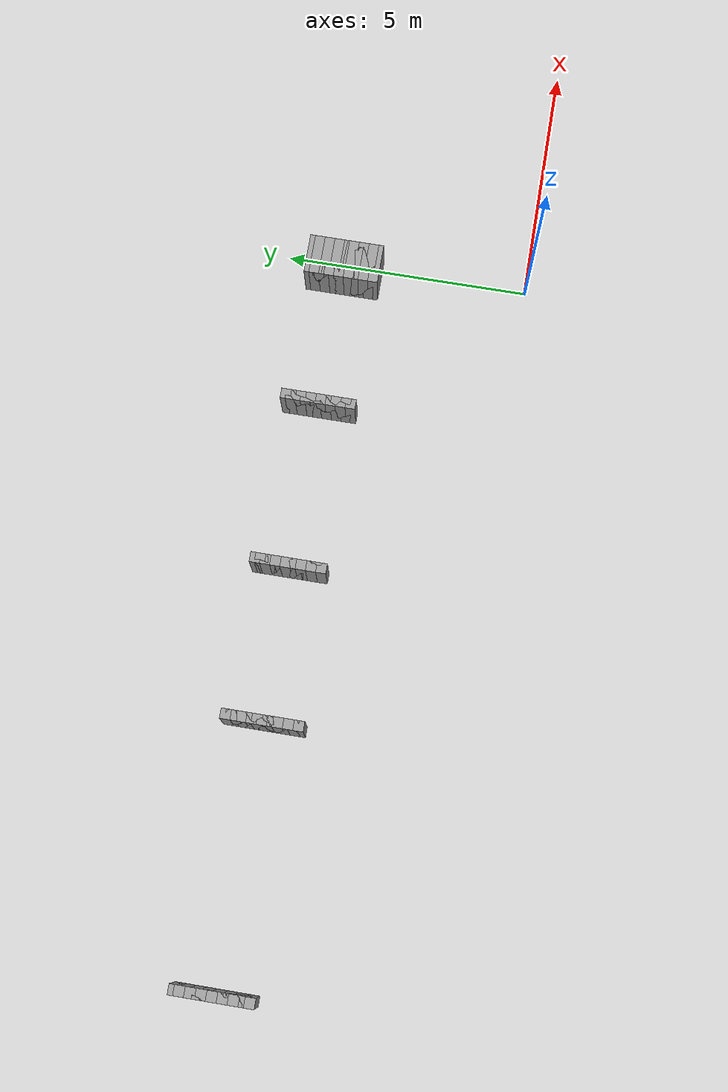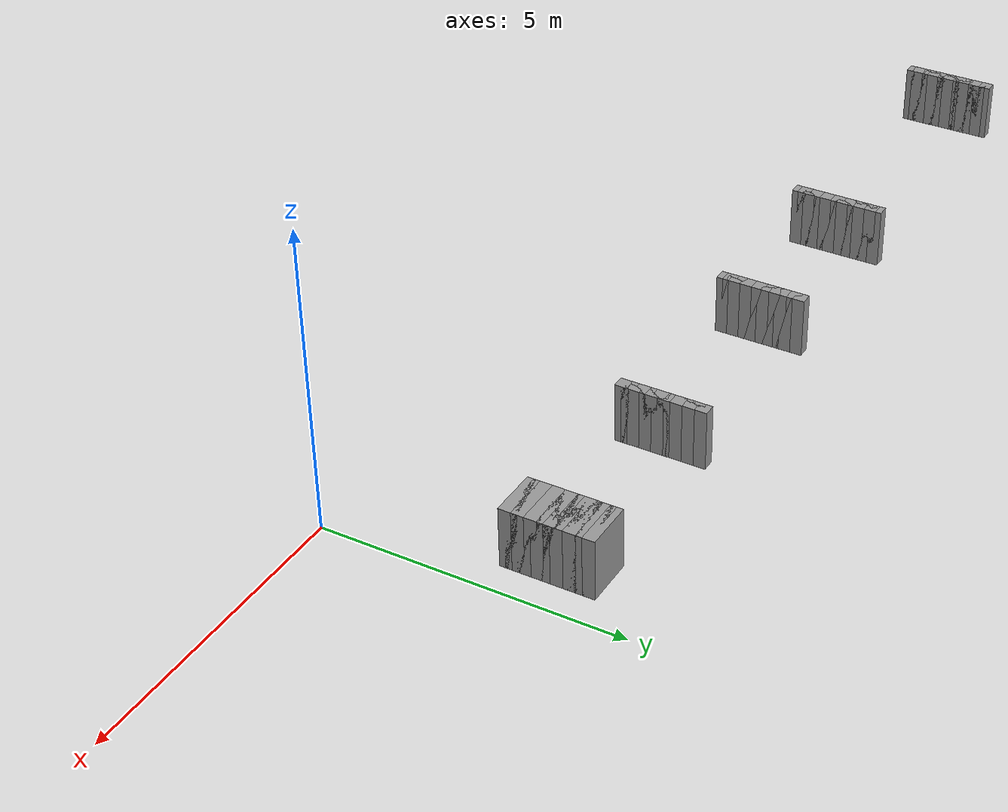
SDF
<sdf version="1.6">
 <world name="GridMap">
  <model name="GridMap">
   <link name="Wall_(98.0,30.0)">
    <collision name="Wall_(98.0,30.0)_Collision">
     <geometry><box><size>0.2 0.2 1.0</size></box></geometry>
     <pose>-9.8 3.0 0.5 0 -0 0</pose>
    </collision>
    <visual name="Wall_(98.0,30.0)_Visual">
     <geometry><box><size>0.2 0.2 1.0</size></box></geometry>
     <pose>-9.8 3.0 0.5 0 -0 0</pose>
     <material>
      <script><uri>file://media/materials/scripts/gazebo.material</uri><name>Gazebo/Grey</name></script>
      <ambient>1 1 1 1</ambient>
     </material>
     <meta><layer>0</layer></meta>
    </visual>
    <pose>0 0 0.5 0 -0 0</pose>
   </link>
   <link name="Wall_(148.5,30.0)">
    <collision name="Wall_(148.5,30.0)_Collision">
     <geometry><box><size>0.2 0.2 1.0</size></box></geometry>
     <pose>-14.850000000000001 3.0 0.5 0 -0 0</pose>
    </collision>
    <visual name="Wall_(148.5,30.0)_Visual">
     <geometry><box><size>0.2 0.2 1.0</size></box></geometry>
     <pose>-14.850000000000001 3.0 0.5 0 -0 0</pose>
     <material>
      <script><uri>file://media/materials/scripts/gazebo.material</uri><name>Gazebo/Grey</name></script>
      <ambient>1 1 1 1</ambient>
     </material>
     <meta><layer>0</layer></meta>
    </visual>
    <pose>0 0 0.5 0 -0 0</pose>
   </link>
   <link name="Wall_(4.0,31.0)">
    <collision name="Wall_(4.0,31.0)_Collision">
     <geometry><box><size>0.8 0.2 1.0</size></box></geometry>
     <pose>-0.4 3.1 0.5 0 -0 0</pose>
    </collision>
    <visual name="Wall_(4.0,31.0)_Visual">
     <geometry><box><size>0.8 0.2 1.0</size></box></geometry>
     <pose>-0.4 3.1 0.5 0 -0 0</pose>
     <material>
      <script><uri>file://media/materials/scripts/gazebo.material</uri><name>Gazebo/Grey</name></script>
      <ambient>1 1 1 1</ambient>
     </material>
     <meta><layer>0</layer></meta>
    </visual>
    <pose>0 0 0.5 0 -0 0</pose>
   </link>
   <link name="Wall_(34.0,31.0)">
    <collision name="Wall_(34.0,31.0)_Collision">
     <geometry><box><size>0.2 0.2 1.0</size></box></geometry>
     <pose>-3.4000000000000004 3.1 0.5 0 -0 0</pose>
    </collision>
    <visual name="Wall_(34.0,31.0)_Visual">
     <geometry><box><size>0.2 0.2 1.0</size></box></geometry>
     <pose>-3.4000000000000004 3.1 0.5 0 -0 0</pose>
     <material>
      <script><uri>file://media/materials/scripts/gazebo.material</uri><name>Gazebo/Grey</name></script>
      <ambient>1 1 1 1</ambient>
     </material>
     <meta><layer>0</layer></meta>
    </visual>
    <pose>0 0 0.5 0 -0 0</pose>
   </link>
   <link name="Wall_(67.5,31.0)">
    <collision name="Wall_(67.5,31.0)_Collision">
     <geometry><box><size>0.2 0.2 1.0</size></box></geometry>
     <pose>-6.75 3.1 0.5 0 -0 0</pose>
    </collision>
    <visual name="Wall_(67.5,31.0)_Visual">
     <geometry><box><size>0.2 0.2 1.0</size></box></geometry>
     <pose>-6.75 3.1 0.5 0 -0 0</pose>
     <material>
      <script><uri>file://media/materials/scripts/gazebo.material</uri><name>Gazebo/Grey</name></script>
      <ambient>1 1 1 1</ambient>
     </material>
     <meta><layer>0</layer></meta>
    </visual>
    <pose>0 0 0.5 0 -0 0</pose>
   </link>
   <link name="Wall_(98.0,31.0)">
    <collision name="Wall_(98.0,31.0)_Collision">
     <geometry><box><size>0.2 0.2 1.0</size></box></geometry>
     <pose>-9.8 3.1 0.5 0 -0 0</pose>
    </collision>
    <visual name="Wall_(98.0,31.0)_Visual">
     <geometry><box><size>0.2 0.2 1.0</size></box></geometry>
     <pose>-9.8 3.1 0.5 0 -0 0</pose>
     <material>
      <script><uri>file://media/materials/scripts/gazebo.material</uri><name>Gazebo/Grey</name></script>
      <ambient>1 1 1 1</ambient>
     </material>
     <meta><layer>0</layer></meta>
    </visual>
    <pose>0 0 0.5 0 -0 0</pose>
   </link>
   <link name="Wall_(148.5,31.0)">
    <collision name="Wall_(148.5,31.0)_Collision">
     <geometry><box><size>0.2 0.2 1.0</size></box></geometry>
     <pose>-14.850000000000001 3.1 0.5 0 -0 0</pose>
    </collision>
    <visual name="Wall_(148.5,31.0)_Visual">
     <geometry><box><size>0.2 0.2 1.0</size></box></geometry>
     <pose>-14.850000000000001 3.1 0.5 0 -0 0</pose>
     <material>
      <script><uri>file://media/materials/scripts/gazebo.material</uri><name>Gazebo/Grey</name></script>
      <ambient>1 1 1 1</ambient>
     </material>
     <meta><layer>0</layer></meta>
    </visual>
    <pose>0 0 0.5 0 -0 0</pose>
   </link>
   <link name="Wall_(4.0,32.0)">
    <collision name="Wall_(4.0,32.0)_Collision">
     <geometry><box><size>0.8 0.2 1.0</size></box></geometry>
     <pose>-0.4 3.2 0.5 0 -0 0</pose>
    </collision>
    <visual name="Wall_(4.0,32.0)_Visual">
     <geometry><box><size>0.8 0.2 1.0</size></box></geometry>
     <pose>-0.4 3.2 0.5 0 -0 0</pose>
     <material>
      <script><uri>file://media/materials/scripts/gazebo.material</uri><name>Gazebo/Grey</name></script>
      <ambient>1 1 1 1</ambient>
     </material>
     <meta><layer>0</layer></meta>
    </visual>
    <pose>0 0 0.5 0 -0 0</pose>
   </link>
   <link name="Wall_(34.0,32.0)">
    <collision name="Wall_(34.0,32.0)_Collision">
     <geometry><box><size>0.2 0.2 1.0</size></box></geometry>
     <pose>-3.4000000000000004 3.2 0.5 0 -0 0</pose>
    </collision>
    <visual name="Wall_(34.0,32.0)_Visual">
     <geometry><box><size>0.2 0.2 1.0</size></box></geometry>
     <pose>-3.4000000000000004 3.2 0.5 0 -0 0</pose>
     <material>
      <script><uri>file://media/materials/scripts/gazebo.material</uri><name>Gazebo/Grey</name></script>
      <ambient>1 1 1 1</ambient>
     </material>
     <meta><layer>0</layer></meta>
    </visual>
    <pose>0 0 0.5 0 -0 0</pose>
   </link>
   <link name="Wall_(67.5,32.0)">
    <collision name="Wall_(67.5,32.0)_Collision">
     <geometry><box><size>0.2 0.2 1.0</size></box></geometry>
     <pose>-6.75 3.2 0.5 0 -0 0</pose>
    </collision>
    <visual name="Wall_(67.5,32.0)_Visual">
     <geometry><box><size>0.2 0.2 1.0</size></box></geometry>
     <pose>-6.75 3.2 0.5 0 -0 0</pose>
     <material>
      <script><uri>file://media/materials/scripts/gazebo.material</uri><name>Gazebo/Grey</name></script>
      <ambient>1 1 1 1</ambient>
     </material>
     <meta><layer>0</layer></meta>
    </visual>
    <pose>0 0 0.5 0 -0 0</pose>
   </link>
   <link name="Wall_(98.0,32.0)">
    <collision name="Wall_(98.0,32.0)_Collision">
     <geometry><box><size>0.2 0.2 1.0</size></box></geometry>
     <pose>-9.8 3.2 0.5 0 -0 0</pose>
    </collision>
    <visual name="Wall_(98.0,32.0)_Visual">
     <geometry><box><size>0.2 0.2 1.0</size></box></geometry>
     <pose>-9.8 3.2 0.5 0 -0 0</pose>
     <material>
      <script><uri>file://media/materials/scripts/gazebo.material</uri><name>Gazebo/Grey</name></script>
      <ambient>1 1 1 1</ambient>
     </material>
     <meta><layer>0</layer></meta>
    </visual>
    <pose>0 0 0.5 0 -0 0</pose>
   </link>
   <link name="Wall_(148.5,32.0)">
    <collision name="Wall_(148.5,32.0)_Collision">
     <geometry><box><size>0.2 0.2 1.0</size></box></geometry>
     <pose>-14.850000000000001 3.2 0.5 0 -0 0</pose>
    </collision>
    <visual name="Wall_(148.5,32.0)_Visual">
     <geometry><box><size>0.2 0.2 1.0</size></box></geometry>
     <pose>-14.850000000000001 3.2 0.5 0 -0 0</pose>
     <material>
      <script><uri>file://media/materials/scripts/gazebo.material</uri><name>Gazebo/Grey</name></script>
      <ambient>1 1 1 1</ambient>
     </material>
     <meta><layer>0</layer></meta>
    </visual>
    <pose>0 0 0.5 0 -0 0</pose>
   </link>
   <link name="Wall_(4.0,33.0)">
    <collision name="Wall_(4.0,33.0)_Collision">
     <geometry><box><size>0.8 0.2 1.0</size></box></geometry>
     <pose>-0.4 3.3000000000000003 0.5 0 -0 0</pose>
    </collision>
    <visual name="Wall_(4.0,33.0)_Visual">
     <geometry><box><size>0.8 0.2 1.0</size></box></geometry>
     <pose>-0.4 3.3000000000000003 0.5 0 -0 0</pose>
     <material>
      <script><uri>file://media/materials/scripts/gazebo.material</uri><name>Gazebo/Grey</name></script>
      <ambient>1 1 1 1</ambient>
     </material>
     <meta><layer>0</layer></meta>
    </visual>
    <pose>0 0 0.5 0 -0 0</pose>
   </link>
   <link name="Wall_(34.0,33.0)">
    <collision name="Wall_(34.0,33.0)_Collision">
     <geometry><box><size>0.2 0.2 1.0</size></box></geometry>
     <pose>-3.4000000000000004 3.3000000000000003 0.5 0 -0 0</pose>
    </collision>
    <visual name="Wall_(34.0,33.0)_Visual">
     <geometry><box><size>0.2 0.2 1.0</size></box></geometry>
     <pose>-3.4000000000000004 3.3000000000000003 0.5 0 -0 0</pose>
     <material>
      <script><uri>file://media/materials/scripts/gazebo.material</uri><name>Gazebo/Grey</name></script>
      <ambient>1 1 1 1</ambient>
     </material>
     <meta><layer>0</layer></meta>
    </visual>
    <pose>0 0 0.5 0 -0 0</pose>
   </link>
   <link name="Wall_(67.5,33.0)">
    <collision name="Wall_(67.5,33.0)_Collision">
     <geometry><box><size>0.2 0.2 1.0</size></box></geometry>
     <pose>-6.75 3.3000000000000003 0.5 0 -0 0</pose>
    </collision>
    <visual name="Wall_(67.5,33.0)_Visual">
     <geometry><box><size>0.2 0.2 1.0</size></box></geometry>
     <pose>-6.75 3.3000000000000003 0.5 0 -0 0</pose>
     <material>
      <script><uri>file://media/materials/scripts/gazebo.material</uri><name>Gazebo/Grey</name></script>
      <ambient>1 1 1 1</ambient>
     </material>
     <meta><layer>0</layer></meta>
    </visual>
    <pose>0 0 0.5 0 -0 0</pose>
   </link>
   <link name="Wall_(98.0,33.0)">
    <collision name="Wall_(98.0,33.0)_Collision">
     <geometry><box><size>0.2 0.2 1.0</size></box></geometry>
     <pose>-9.8 3.3000000000000003 0.5 0 -0 0</pose>
    </collision>
    <visual name="Wall_(98.0,33.0)_Visual">
     <geometry><box><size>0.2 0.2 1.0</size></box></geometry>
     <pose>-9.8 3.3000000000000003 0.5 0 -0 0</pose>
     <material>
      <script><uri>file://media/materials/scripts/gazebo.material</uri><name>Gazebo/Grey</name></script>
      <ambient>1 1 1 1</ambient>
     </material>
     <meta><layer>0</layer></meta>
    </visual>
    <pose>0 0 0.5 0 -0 0</pose>
   </link>
   <link name="Wall_(148.5,33.0)">
    <collision name="Wall_(148.5,33.0)_Collision">
     <geometry><box><size>0.2 0.2 1.0</size></box></geometry>
     <pose>-14.850000000000001 3.3000000000000003 0.5 0 -0 0</pose>
    </collision>
    <visual name="Wall_(148.5,33.0)_Visual">
     <geometry><box><size>0.2 0.2 1.0</size></box></geometry>
     <pose>-14.850000000000001 3.3000000000000003 0.5 0 -0 0</pose>
     <material>
      <script><uri>file://media/materials/scripts/gazebo.material</uri><name>Gazebo/Grey</name></script>
      <ambient>1 1 1 1</ambient>
     </material>
     <meta><layer>0</layer></meta>
    </visual>
    <pose>0 0 0.5 0 -0 0</pose>
   </link>
   <link name="Wall_(4.0,34.0)">
    <collision name="Wall_(4.0,34.0)_Collision">
     <geometry><box><size>0.8 0.2 1.0</size></box></geometry>
     <pose>-0.4 3.4000000000000004 0.5 0 -0 0</pose>
    </collision>
    <visual name="Wall_(4.0,34.0)_Visual">
     <geometry><box><size>0.8 0.2 1.0</size></box></geometry>
     <pose>-0.4 3.4000000000000004 0.5 0 -0 0</pose>
     <material>
      <script><uri>file://media/materials/scripts/gazebo.material</uri><name>Gazebo/Grey</name></script>
      <ambient>1 1 1 1</ambient>
     </material>
     <meta><layer>0</layer></meta>
    </visual>
    <pose>0 0 0.5 0 -0 0</pose>
   </link>
   <link name="Wall_(34.0,34.0)">
    <collision name="Wall_(34.0,34.0)_Collision">
     <geometry><box><size>0.2 0.2 1.0</size></box></geometry>
     <pose>-3.4000000000000004 3.4000000000000004 0.5 0 -0 0</pose>
    </collision>
    <visual name="Wall_(34.0,34.0)_Visual">
     <geometry><box><size>0.2 0.2 1.0</size></box></geometry>
     <pose>-3.4000000000000004 3.4000000000000004 0.5 0 -0 0</pose>
     <material>
      <script><uri>file://media/materials/scripts/gazebo.material</uri><name>Gazebo/Grey</name></script>
      <ambient>1 1 1 1</ambient>
     </material>
     <meta><layer>0</layer></meta>
    </visual>
    <pose>0 0 0.5 0 -0 0</pose>
   </link>
   <link name="Wall_(67.5,34.0)">
    <collision name="Wall_(67.5,34.0)_Collision">
     <geometry><box><size>0.2 0.2 1.0</size></box></geometry>
     <pose>-6.75 3.4000000000000004 0.5 0 -0 0</pose>
    </collision>
    <visual name="Wall_(67.5,34.0)_Visual">
     <geometry><box><size>0.2 0.2 1.0</size></box></geometry>
     <pose>-6.75 3.4000000000000004 0.5 0 -0 0</pose>
     <material>
      <script><uri>file://media/materials/scripts/gazebo.material</uri><name>Gazebo/Grey</name></script>
      <ambient>1 1 1 1</ambient>
     </material>
     <meta><layer>0</layer></meta>
    </visual>
    <pose>0 0 0.5 0 -0 0</pose>
   </link>
   <link name="Wall_(98.0,34.0)">
    <collision name="Wall_(98.0,34.0)_Collision">
     <geometry><box><size>0.2 0.2 1.0</size></box></geometry>
     <pose>-9.8 3.4000000000000004 0.5 0 -0 0</pose>
    </collision>
    <visual name="Wall_(98.0,34.0)_Visual">
     <geometry><box><size>0.2 0.2 1.0</size></box></geometry>
     <pose>-9.8 3.4000000000000004 0.5 0 -0 0</pose>
     <material>
      <script><uri>file://media/materials/scripts/gazebo.material</uri><name>Gazebo/Grey</name></script>
      <ambient>1 1 1 1</ambient>
     </material>
     <meta><layer>0</layer></meta>
    </visual>
    <pose>0 0 0.5 0 -0 0</pose>
   </link>
   <link name="Wall_(148.5,34.0)">
    <collision name="Wall_(148.5,34.0)_Collision">
     <geometry><box><size>0.2 0.2 1.0</size></box></geometry>
     <pose>-14.850000000000001 3.4000000000000004 0.5 0 -0 0</pose>
    </collision>
    <visual name="Wall_(148.5,34.0)_Visual">
     <geometry><box><size>0.2 0.2 1.0</size></box></geometry>
     <pose>-14.850000000000001 3.4000000000000004 0.5 0 -0 0</pose>
     <material>
      <script><uri>file://media/materials/scripts/gazebo.material</uri><name>Gazebo/Grey</name></script>
      <ambient>1 1 1 1</ambient>
     </material>
     <meta><layer>0</layer></meta>
    </visual>
    <pose>0 0 0.5 0 -0 0</pose>
   </link>
   <link name="Wall_(4.0,35.0)">
    <collision name="Wall_(4.0,35.0)_Collision">
     <geometry><box><size>0.8 0.2 1.0</size></box></geometry>
     <pose>-0.4 3.5 0.5 0 -0 0</pose>
    </collision>
    <visual name="Wall_(4.0,35.0)_Visual">
     <geometry><box><size>0.8 0.2 1.0</size></box></geometry>
     <pose>-0.4 3.5 0.5 0 -0 0</pose>
     <material>
      <script><uri>file://media/materials/scripts/gazebo.material</uri><name>Gazebo/Grey</name></script>
      <ambient>1 1 1 1</ambient>
     </material>
     <meta><layer>0</layer></meta>
    </visual>
    <pose>0 0 0.5 0 -0 0</pose>
   </link>
   <link name="Wall_(34.0,35.0)">
    <collision name="Wall_(34.0,35.0)_Collision">
     <geometry><box><size>0.2 0.2 1.0</size></box></geometry>
     <pose>-3.4000000000000004 3.5 0.5 0 -0 0</pose>
    </collision>
    <visual name="Wall_(34.0,35.0)_Visual">
     <geometry><box><size>0.2 0.2 1.0</size></box></geometry>
     <pose>-3.4000000000000004 3.5 0.5 0 -0 0</pose>
     <material>
      <script><uri>file://media/materials/scripts/gazebo.material</uri><name>Gazebo/Grey</name></script>
      <ambient>1 1 1 1</ambient>
     </material>
     <meta><layer>0</layer></meta>
    </visual>
    <pose>0 0 0.5 0 -0 0</pose>
   </link>
   <link name="Wall_(67.5,35.0)">
    <collision name="Wall_(67.5,35.0)_Collision">
     <geometry><box><size>0.2 0.2 1.0</size></box></geometry>
     <pose>-6.75 3.5 0.5 0 -0 0</pose>
    </collision>
    <visual name="Wall_(67.5,35.0)_Visual">
     <geometry><box><size>0.2 0.2 1.0</size></box></geometry>
     <pose>-6.75 3.5 0.5 0 -0 0</pose>
     <material>
      <script><uri>file://media/materials/scripts/gazebo.material</uri><name>Gazebo/Grey</name></script>
      <ambient>1 1 1 1</ambient>
     </material>
     <meta><layer>0</layer></meta>
    </visual>
    <pose>0 0 0.5 0 -0 0</pose>
   </link>
   <link name="Wall_(98.0,35.0)">
    <collision name="Wall_(98.0,35.0)_Collision">
     <geometry><box><size>0.2 0.2 1.0</size></box></geometry>
     <pose>-9.8 3.5 0.5 0 -0 0</pose>
    </collision>
    <visual name="Wall_(98.0,35.0)_Visual">
     <geometry><box><size>0.2 0.2 1.0</size></box></geometry>
     <pose>-9.8 3.5 0.5 0 -0 0</pose>
     <material>
      <script><uri>file://media/materials/scripts/gazebo.material</uri><name>Gazebo/Grey</name></script>
      <ambient>1 1 1 1</ambient>
     </material>
     <meta><layer>0</layer></meta>
    </visual>
    <pose>0 0 0.5 0 -0 0</pose>
   </link>
   <link name="Wall_(148.5,35.0)">
    <collision name="Wall_(148.5,35.0)_Collision">
     <geometry><box><size>0.2 0.2 1.0</size></box></geometry>
     <pose>-14.850000000000001 3.5 0.5 0 -0 0</pose>
    </collision>
    <visual name="Wall_(148.5,35.0)_Visual">
     <geometry><box><size>0.2 0.2 1.0</size></box></geometry>
     <pose>-14.850000000000001 3.5 0.5 0 -0 0</pose>
     <material>
      <script><uri>file://media/materials/scripts/gazebo.material</uri><name>Gazebo/Grey</name></script>
      <ambient>1 1 1 1</ambient>
     </material>
     <meta><layer>0</layer></meta>
    </visual>
    <pose>0 0 0.5 0 -0 0</pose>
   </link>
   <link name="Wall_(4.0,36.0)">
    <collision name="Wall_(4.0,36.0)_Collision">
     <geometry><box><size>0.8 0.2 1.0</size></box></geometry>
     <pose>-0.4 3.6 0.5 0 -0 0</pose>
    </collision>
    <visual name="Wall_(4.0,36.0)_Visual">
     <geometry><box><size>0.8 0.2 1.0</size></box></geometry>
     <pose>-0.4 3.6 0.5 0 -0 0</pose>
     <material>
      <script><uri>file://media/materials/scripts/gazebo.material</uri><name>Gazebo/Grey</name></script>
      <ambient>1 1 1 1</ambient>
     </material>
     <meta><layer>0</layer></meta>
    </visual>
    <pose>0 0 0.5 0 -0 0</pose>
   </link>
   <link name="Wall_(34.0,36.0)">
    <collision name="Wall_(34.0,36.0)_Collision">
     <geometry><box><size>0.2 0.2 1.0</size></box></geometry>
     <pose>-3.4000000000000004 3.6 0.5 0 -0 0</pose>
    </collision>
    <visual name="Wall_(34.0,36.0)_Visual">
     <geometry><box><size>0.2 0.2 1.0</size></box></geometry>
     <pose>-3.4000000000000004 3.6 0.5 0 -0 0</pose>
     <material>
      <script><uri>file://media/materials/scripts/gazebo.material</uri><name>Gazebo/Grey</name></script>
      <ambient>1 1 1 1</ambient>
     </material>
     <meta><layer>0</layer></meta>
    </visual>
    <pose>0 0 0.5 0 -0 0</pose>
   </link>
   <link name="Wall_(67.5,36.0)">
    <collision name="Wall_(67.5,36.0)_Collision">
     <geometry><box><size>0.2 0.2 1.0</size></box></geometry>
     <pose>-6.75 3.6 0.5 0 -0 0</pose>
    </collision>
    <visual name="Wall_(67.5,36.0)_Visual">
     <geometry><box><size>0.2 0.2 1.0</size></box></geometry>
     <pose>-6.75 3.6 0.5 0 -0 0</pose>
     <material>
      <script><uri>file://media/materials/scripts/gazebo.material</uri><name>Gazebo/Grey</name></script>
      <ambient>1 1 1 1</ambient>
     </material>
     <meta><layer>0</layer></meta>
    </visual>
    <pose>0 0 0.5 0 -0 0</pose>
   </link>
   <link name="Wall_(98.0,36.0)">
    <collision name="Wall_(98.0,36.0)_Collision">
     <geometry><box><size>0.2 0.2 1.0</size></box></geometry>
     <pose>-9.8 3.6 0.5 0 -0 0</pose>
    </collision>
    <visual name="Wall_(98.0,36.0)_Visual">
     <geometry><box><size>0.2 0.2 1.0</size></box></geometry>
     <pose>-9.8 3.6 0.5 0 -0 0</pose>
     <material>
      <script><uri>file://media/materials/scripts/gazebo.material</uri><name>Gazebo/Grey</name></script>
      <ambient>1 1 1 1</ambient>
     </material>
     <meta><layer>0</layer></meta>
    </visual>
    <pose>0 0 0.5 0 -0 0</pose>
   </link>
   <link name="Wall_(148.5,36.0)">
    <collision name="Wall_(148.5,36.0)_Collision">
     <geometry><box><size>0.2 0.2 1.0</size></box></geometry>
     <pose>-14.850000000000001 3.6 0.5 0 -0 0</pose>
    </collision>
    <visual name="Wall_(148.5,36.0)_Visual">
     <geometry><box><size>0.2 0.2 1.0</size></box></geometry>
     <pose>-14.850000000000001 3.6 0.5 0 -0 0</pose>
     <material>
      <script><uri>file://media/materials/scripts/gazebo.material</uri><name>Gazebo/Grey</name></script>
      <ambient>1 1 1 1</ambient>
     </material>
     <meta><layer>0</layer></meta>
    </visual>
    <pose>0 0 0.5 0 -0 0</pose>
   </link>
   <link name="Wall_(4.0,37.0)">
    <collision name="Wall_(4.0,37.0)_Collision">
     <geometry><box><size>0.8 0.2 1.0</size></box></geometry>
     <pose>-0.4 3.7 0.5 0 -0 0</pose>
    </collision>
    <visual name="Wall_(4.0,37.0)_Visual">
     <geometry><box><size>0.8 0.2 1.0</size></box></geometry>
     <pose>-0.4 3.7 0.5 0 -0 0</pose>
     <material>
      <script><uri>file://media/materials/scripts/gazebo.material</uri><name>Gazebo/Grey</name></script>
      <ambient>1 1 1 1</ambient>
     </material>
     <meta><layer>0</layer></meta>
    </visual>
    <pose>0 0 0.5 0 -0 0</pose>
   </link>
   <link name="Wall_(34.0,37.0)">
    <collision name="Wall_(34.0,37.0)_Collision">
     <geometry><box><size>0.2 0.2 1.0</size></box></geometry>
     <pose>-3.4000000000000004 3.7 0.5 0 -0 0</pose>
    </collision>
    <visual name="Wall_(34.0,37.0)_Visual">
     <geometry><box><size>0.2 0.2 1.0</size></box></geometry>
     <pose>-3.4000000000000004 3.7 0.5 0 -0 0</pose>
     <material>
      <script><uri>file://media/materials/scripts/gazebo.material</uri><name>Gazebo/Grey</name></script>
      <ambient>1 1 1 1</ambient>
     </material>
     <meta><layer>0</layer></meta>
    </visual>
    <pose>0 0 0.5 0 -0 0</pose>
   </link>
   <link name="Wall_(67.5,37.0)">
    <collision name="Wall_(67.5,37.0)_Collision">
     <geometry><box><size>0.2 0.2 1.0</size></box></geometry>
     <pose>-6.75 3.7 0.5 0 -0 0</pose>
    </collision>
    <visual name="Wall_(67.5,37.0)_Visual">
     <geometry><box><size>0.2 0.2 1.0</size></box></geometry>
     <pose>-6.75 3.7 0.5 0 -0 0</pose>
     <material>
      <script><uri>file://media/materials/scripts/gazebo.material</uri><name>Gazebo/Grey</name></script>
      <ambient>1 1 1 1</ambient>
     </material>
     <meta><layer>0</layer></meta>
    </visual>
    <pose>0 0 0.5 0 -0 0</pose>
   </link>
   <link name="Wall_(98.0,37.0)">
    <collision name="Wall_(98.0,37.0)_Collision">
     <geometry><box><size>0.2 0.2 1.0</size></box></geometry>
     <pose>-9.8 3.7 0.5 0 -0 0</pose>
    </collision>
    <visual name="Wall_(98.0,37.0)_Visual">
     <geometry><box><size>0.2 0.2 1.0</size></box></geometry>
     <pose>-9.8 3.7 0.5 0 -0 0</pose>
     <material>
      <script><uri>file://media/materials/scripts/gazebo.material</uri><name>Gazebo/Grey</name></script>
      <ambient>1 1 1 1</ambient>
     </material>
     <meta><layer>0</layer></meta>
    </visual>
    <pose>0 0 0.5 0 -0 0</pose>
   </link>
   <link name="Wall_(148.5,37.0)">
    <collision name="Wall_(148.5,37.0)_Collision">
     <geometry><box><size>0.2 0.2 1.0</size></box></geometry>
     <pose>-14.850000000000001 3.7 0.5 0 -0 0</pose>
    </collision>
    <visual name="Wall_(148.5,37.0)_Visual">
     <geometry><box><size>0.2 0.2 1.0</size></box></geometry>
     <pose>-14.850000000000001 3.7 0.5 0 -0 0</pose>
     <material>
      <script><uri>file://media/materials/scripts/gazebo.material</uri><name>Gazebo/Grey</name></script>
      <ambient>1 1 1 1</ambient>
     </material>
     <meta><layer>0</layer></meta>
    </visual>
    <pose>0 0 0.5 0 -0 0</pose>
   </link>
   <link name="Wall_(4.0,38.0)">
    <collision name="Wall_(4.0,38.0)_Collision">
     <geometry><box><size>0.8 0.2 1.0</size></box></geometry>
     <pose>-0.4 3.8000000000000003 0.5 0 -0 0</pose>
    </collision>
    <visual name="Wall_(4.0,38.0)_Visual">
     <geometry><box><size>0.8 0.2 1.0</size></box></geometry>
     <pose>-0.4 3.8000000000000003 0.5 0 -0 0</pose>
     <material>
      <script><uri>file://media/materials/scripts/gazebo.material</uri><name>Gazebo/Grey</name></script>
      <ambient>1 1 1 1</ambient>
     </material>
     <meta><layer>0</layer></meta>
    </visual>
    <pose>0 0 0.5 0 -0 0</pose>
   </link>
   <link name="Wall_(34.0,38.0)">
    <collision name="Wall_(34.0,38.0)_Collision">
     <geometry><box><size>0.2 0.2 1.0</size></box></geometry>
     <pose>-3.4000000000000004 3.8000000000000003 0.5 0 -0 0</pose>
    </collision>
    <visual name="Wall_(34.0,38.0)_Visual">
     <geometry><box><size>0.2 0.2 1.0</size></box></geometry>
     <pose>-3.4000000000000004 3.8000000000000003 0.5 0 -0 0</pose>
     <material>
      <script><uri>file://media/materials/scripts/gazebo.material</uri><name>Gazebo/Grey</name></script>
      <ambient>1 1 1 1</ambient>
     </material>
     <meta><layer>0</layer></meta>
    </visual>
    <pose>0 0 0.5 0 -0 0</pose>
   </link>
   <link name="Wall_(67.5,38.0)">
    <collision name="Wall_(67.5,38.0)_Collision">
     <geometry><box><size>0.2 0.2 1.0</size></box></geometry>
     <pose>-6.75 3.8000000000000003 0.5 0 -0 0</pose>
    </collision>
    <visual name="Wall_(67.5,38.0)_Visual">
     <geometry><box><size>0.2 0.2 1.0</size></box></geometry>
     <pose>-6.75 3.8000000000000003 0.5 0 -0 0</pose>
     <material>
      <script><uri>file://media/materials/scripts/gazebo.material</uri><name>Gazebo/Grey</name></script>
      <ambient>1 1 1 1</ambient>
     </material>
     <meta><layer>0</layer></meta>
    </visual>
    <pose>0 0 0.5 0 -0 0</pose>
   </link>
   <link name="Wall_(98.0,38.0)">
    <collision name="Wall_(98.0,38.0)_Collision">
     <geometry><box><size>0.2 0.2 1.0</size></box></geometry>
     <pose>-9.8 3.8000000000000003 0.5 0 -0 0</pose>
    </collision>
    <visual name="Wall_(98.0,38.0)_Visual">
     <geometry><box><size>0.2 0.2 1.0</size></box></geometry>
     <pose>-9.8 3.8000000000000003 0.5 0 -0 0</pose>
     <material>
      <script><uri>file://media/materials/scripts/gazebo.material</uri><name>Gazebo/Grey</name></script>
      <ambient>1 1 1 1</ambient>
     </material>
     <meta><layer>0</layer></meta>
    </visual>
    <pose>0 0 0.5 0 -0 0</pose>
   </link>
   <link name="Wall_(148.5,38.0)">
    <collision name="Wall_(148.5,38.0)_Collision">
     <geometry><box><size>0.2 0.2 1.0</size></box></geometry>
     <pose>-14.850000000000001 3.8000000000000003 0.5 0 -0 0</pose>
    </collision>
    <visual name="Wall_(148.5,38.0)_Visual">
     <geometry><box><size>0.2 0.2 1.0</size></box></geometry>
     <pose>-14.850000000000001 3.8000000000000003 0.5 0 -0 0</pose>
     <material>
      <script><uri>file://media/materials/scripts/gazebo.material</uri><name>Gazebo/Grey</name></script>
      <ambient>1 1 1 1</ambient>
     </material>
     <meta><layer>0</layer></meta>
    </visual>
    <pose>0 0 0.5 0 -0 0</pose>
   </link>
   <link name="Wall_(4.0,39.0)">
    <collision name="Wall_(4.0,39.0)_Collision">
     <geometry><box><size>0.8 0.2 1.0</size></box></geometry>
     <pose>-0.4 3.9000000000000004 0.5 0 -0 0</pose>
    </collision>
    <visual name="Wall_(4.0,39.0)_Visual">
     <geometry><box><size>0.8 0.2 1.0</size></box></geometry>
     <pose>-0.4 3.9000000000000004 0.5 0 -0 0</pose>
     <material>
      <script><uri>file://media/materials/scripts/gazebo.material</uri><name>Gazebo/Grey</name></script>
      <ambient>1 1 1 1</ambient>
     </material>
     <meta><layer>0</layer></meta>
    </visual>
    <pose>0 0 0.5 0 -0 0</pose>
   </link>
   <link name="Wall_(34.0,39.0)">
    <collision name="Wall_(34.0,39.0)_Collision">
     <geometry><box><size>0.2 0.2 1.0</size></box></geometry>
     <pose>-3.4000000000000004 3.9000000000000004 0.5 0 -0 0</pose>
    </collision>
    <visual name="Wall_(34.0,39.0)_Visual">
     <geometry><box><size>0.2 0.2 1.0</size></box></geometry>
     <pose>-3.4000000000000004 3.9000000000000004 0.5 0 -0 0</pose>
     <material>
      <script><uri>file://media/materials/scripts/gazebo.material</uri><name>Gazebo/Grey</name></script>
      <ambient>1 1 1 1</ambient>
     </material>
     <meta><layer>0</layer></meta>
    </visual>
    <pose>0 0 0.5 0 -0 0</pose>
   </link>
   <link name="Wall_(67.5,39.0)">
    <collision name="Wall_(67.5,39.0)_Collision">
     <geometry><box><size>0.2 0.2 1.0</size></box></geometry>
     <pose>-6.75 3.9000000000000004 0.5 0 -0 0</pose>
    </collision>
    <visual name="Wall_(67.5,39.0)_Visual">
     <geometry><box><size>0.2 0.2 1.0</size></box></geometry>
     <pose>-6.75 3.9000000000000004 0.5 0 -0 0</pose>
     <material>
      <script><uri>file://media/materials/scripts/gazebo.material</uri><name>Gazebo/Grey</name></script>
      <ambient>1 1 1 1</ambient>
     </material>
     <meta><layer>0</layer></meta>
    </visual>
    <pose>0 0 0.5 0 -0 0</pose>
   </link>
   <link name="Wall_(98.0,39.0)">
    <collision name="Wall_(98.0,39.0)_Collision">
     <geometry><box><size>0.2 0.2 1.0</size></box></geometry>
     <pose>-9.8 3.9000000000000004 0.5 0 -0 0</pose>
    </collision>
    <visual name="Wall_(98.0,39.0)_Visual">
     <geometry><box><size>0.2 0.2 1.0</size></box></geometry>
     <pose>-9.8 3.9000000000000004 0.5 0 -0 0</pose>
     <material>
      <script><uri>file://media/materials/scripts/gazebo.material</uri><name>Gazebo/Grey</name></script>
      <ambient>1 1 1 1</ambient>
     </material>
     <meta><layer>0</layer></meta>
    </visual>
    <pose>0 0 0.5 0 -0 0</pose>
   </link>
   <link name="Wall_(148.5,39.0)">
    <collision name="Wall_(148.5,39.0)_Collision">
     <geometry><box><size>0.2 0.2 1.0</size></box></geometry>
     <pose>-14.850000000000001 3.9000000000000004 0.5 0 -0 0</pose>
    </collision>
    <visual name="Wall_(148.5,39.0)_Visual">
     <geometry><box><size>0.2 0.2 1.0</size></box></geometry>
     <pose>-14.850000000000001 3.9000000000000004 0.5 0 -0 0</pose>
     <material>
      <script><uri>file://media/materials/scripts/gazebo.material</uri><name>Gazebo/Grey</name></script>
      <ambient>1 1 1 1</ambient>
     </material>
     <meta><layer>0</layer></meta>
    </visual>
    <pose>0 0 0.5 0 -0 0</pose>
   </link>
   <link name="Wall_(4.0,40.0)">
    <collision name="Wall_(4.0,40.0)_Collision">
     <geometry><box><size>0.8 0.2 1.0</size></box></geometry>
     <pose>-0.4 4.0 0.5 0 -0 0</pose>
    </collision>
    <visual name="Wall_(4.0,40.0)_Visual">
     <geometry><box><size>0.8 0.2 1.0</size></box></geometry>
     <pose>-0.4 4.0 0.5 0 -0 0</pose>
     <material>
      <script><uri>file://media/materials/scripts/gazebo.material</uri><name>Gazebo/Grey</name></script>
      <ambient>1 1 1 1</ambient>
     </material>
     <meta><layer>0</layer></meta>
    </visual>
    <pose>0 0 0.5 0 -0 0</pose>
   </link>
   <link name="Wall_(34.0,40.0)">
    <collision name="Wall_(34.0,40.0)_Collision">
     <geometry><box><size>0.2 0.2 1.0</size></box></geometry>
     <pose>-3.4000000000000004 4.0 0.5 0 -0 0</pose>
    </collision>
    <visual name="Wall_(34.0,40.0)_Visual">
     <geometry><box><size>0.2 0.2 1.0</size></box></geometry>
     <pose>-3.4000000000000004 4.0 0.5 0 -0 0</pose>
     <material>
      <script><uri>file://media/materials/scripts/gazebo.material</uri><name>Gazebo/Grey</name></script>
      <ambient>1 1 1 1</ambient>
     </material>
     <meta><layer>0</layer></meta>
    </visual>
    <pose>0 0 0.5 0 -0 0</pose>
   </link>
   <link name="Wall_(67.5,40.0)">
    <collision name="Wall_(67.5,40.0)_Collision">
     <geometry><box><size>0.2 0.2 1.0</size></box></geometry>
     <pose>-6.75 4.0 0.5 0 -0 0</pose>
    </collision>
    <visual name="Wall_(67.5,40.0)_Visual">
     <geometry><box><size>0.2 0.2 1.0</size></box></geometry>
     <pose>-6.75 4.0 0.5 0 -0 0</pose>
     <material>
      <script><uri>file://media/materials/scripts/gazebo.material</uri><name>Gazebo/Grey</name></script>
      <ambient>1 1 1 1</ambient>
     </material>
     <meta><layer>0</layer></meta>
    </visual>
    <pose>0 0 0.5 0 -0 0</pose>
   </link>
   <link name="Wall_(98.0,40.0)">
    <collision name="Wall_(98.0,40.0)_Collision">
     <geometry><box><size>0.2 0.2 1.0</size></box></geometry>
     <pose>-9.8 4.0 0.5 0 -0 0</pose>
    </collision>
    <visual name="Wall_(98.0,40.0)_Visual">
     <geometry><box><size>0.2 0.2 1.0</size></box></geometry>
     <pose>-9.8 4.0 0.5 0 -0 0</pose>
     <material>
      <script><uri>file://media/materials/scripts/gazebo.material</uri><name>Gazebo/Grey</name></script>
      <ambient>1 1 1 1</ambient>
     </material>
     <meta><layer>0</layer></meta>
    </visual>
    <pose>0 0 0.5 0 -0 0</pose>
   </link>
   <link name="Wall_(148.5,40.0)">
    <collision name="Wall_(148.5,40.0)_Collision">
     <geometry><box><size>0.2 0.2 1.0</size></box></geometry>
     <pose>-14.850000000000001 4.0 0.5 0 -0 0</pose>
    </collision>
    <visual name="Wall_(148.5,40.0)_Visual">
     <geometry><box><size>0.2 0.2 1.0</size></box></geometry>
     <pose>-14.850000000000001 4.0 0.5 0 -0 0</pose>
     <material>
      <script><uri>file://media/materials/scripts/gazebo.material</uri><name>Gazebo/Grey</name></script>
      <ambient>1 1 1 1</ambient>
     </material>
     <meta><layer>0</layer></meta>
    </visual>
    <pose>0 0 0.5 0 -0 0</pose>
   </link>
   <link name="Wall_(4.0,41.0)">
    <collision name="Wall_(4.0,41.0)_Collision">
     <geometry><box><size>0.8 0.2 1.0</size></box></geometry>
     <pose>-0.4 4.1000000000000005 0.5 0 -0 0</pose>
    </collision>
    <visual name="Wall_(4.0,41.0)_Visual">
     <geometry><box><size>0.8 0.2 1.0</size></box></geometry>
     <pose>-0.4 4.1000000000000005 0.5 0 -0 0</pose>
     <material>
      <script><uri>file://media/materials/scripts/gazebo.material</uri><name>Gazebo/Grey</name></script>
      <ambient>1 1 1 1</ambient>
     </material>
     <meta><layer>0</layer></meta>
    </visual>
    <pose>0 0 0.5 0 -0 0</pose>
   </link>
   <link name="Wall_(34.0,41.0)">
    <collision name="Wall_(34.0,41.0)_Collision">
     <geometry><box><size>0.2 0.2 1.0</size></box></geometry>
     <pose>-3.4000000000000004 4.1000000000000005 0.5 0 -0 0</pose>
    </collision>
    <visual name="Wall_(34.0,41.0)_Visual">
     <geometry><box><size>0.2 0.2 1.0</size></box></geometry>
     <pose>-3.4000000000000004 4.1000000000000005 0.5 0 -0 0</pose>
     <material>
      <script><uri>file://media/materials/scripts/gazebo.material</uri><name>Gazebo/Grey</name></script>
      <ambient>1 1 1 1</ambient>
     </material>
     <meta><layer>0</layer></meta>
    </visual>
    <pose>0 0 0.5 0 -0 0</pose>
   </link>
   <link name="Wall_(67.5,41.0)">
    <collision name="Wall_(67.5,41.0)_Collision">
     <geometry><box><size>0.2 0.2 1.0</size></box></geometry>
     <pose>-6.75 4.1000000000000005 0.5 0 -0 0</pose>
    </collision>
    <visual name="Wall_(67.5,41.0)_Visual">
     <geometry><box><size>0.2 0.2 1.0</size></box></geometry>
     <pose>-6.75 4.1000000000000005 0.5 0 -0 0</pose>
     <material>
      <script><uri>file://media/materials/scripts/gazebo.material</uri><name>Gazebo/Grey</name></script>
      <ambient>1 1 1 1</ambient>
     </material>
     <meta><layer>0</layer></meta>
    </visual>
    <pose>0 0 0.5 0 -0 0</pose>
   </link>
   <link name="Wall_(98.0,41.0)">
    <collision name="Wall_(98.0,41.0)_Collision">
     <geometry><box><size>0.2 0.2 1.0</size></box></geometry>
     <pose>-9.8 4.1000000000000005 0.5 0 -0 0</pose>
    </collision>
    <visual name="Wall_(98.0,41.0)_Visual">
     <geometry><box><size>0.2 0.2 1.0</size></box></geometry>
     <pose>-9.8 4.1000000000000005 0.5 0 -0 0</pose>
     <material>
      <script><uri>file://media/materials/scripts/gazebo.material</uri><name>Gazebo/Grey</name></script>
      <ambient>1 1 1 1</ambient>
     </material>
     <meta><layer>0</layer></meta>
    </visual>
    <pose>0 0 0.5 0 -0 0</pose>
   </link>
   <link name="Wall_(148.5,41.0)">
    <collision name="Wall_(148.5,41.0)_Collision">
     <geometry><box><size>0.2 0.2 1.0</size></box></geometry>
     <pose>-14.850000000000001 4.1000000000000005 0.5 0 -0 0</pose>
    </collision>
    <visual name="Wall_(148.5,41.0)_Visual">
     <geometry><box><size>0.2 0.2 1.0</size></box></geometry>
     <pose>-14.850000000000001 4.1000000000000005 0.5 0 -0 0</pose>
     <material>
      <script><uri>file://media/materials/scripts/gazebo.material</uri><name>Gazebo/Grey</name></script>
      <ambient>1 1 1 1</ambient>
     </material>
     <meta><layer>0</layer></meta>
    </visual>
    <pose>0 0 0.5 0 -0 0</pose>
   </link>
   <link name="Wall_(4.0,42.0)">
    <collision name="Wall_(4.0,42.0)_Collision">
     <geometry><box><size>0.8 0.2 1.0</size></box></geometry>
     <pose>-0.4 4.2 0.5 0 -0 0</pose>
    </collision>
    <visual name="Wall_(4.0,42.0)_Visual">
     <geometry><box><size>0.8 0.2 1.0</size></box></geometry>
     <pose>-0.4 4.2 0.5 0 -0 0</pose>
     <material>
      <script><uri>file://media/materials/scripts/gazebo.material</uri><name>Gazebo/Grey</name></script>
      <ambient>1 1 1 1</ambient>
     </material>
     <meta><layer>0</layer></meta>
    </visual>
    <pose>0 0 0.5 0 -0 0</pose>
   </link>
   <link name="Wall_(34.0,42.0)">
    <collision name="Wall_(34.0,42.0)_Collision">
     <geometry><box><size>0.2 0.2 1.0</size></box></geometry>
     <pose>-3.4000000000000004 4.2 0.5 0 -0 0</pose>
    </collision>
    <visual name="Wall_(34.0,42.0)_Visual">
     <geometry><box><size>0.2 0.2 1.0</size></box></geometry>
     <pose>-3.4000000000000004 4.2 0.5 0 -0 0</pose>
     <material>
      <script><uri>file://media/materials/scripts/gazebo.material</uri><name>Gazebo/Grey</name></script>
      <ambient>1 1 1 1</ambient>
     </material>
     <meta><layer>0</layer></meta>
    </visual>
    <pose>0 0 0.5 0 -0 0</pose>
   </link>
   <link name="Wall_(67.5,42.0)">
    <collision name="Wall_(67.5,42.0)_Collision">
     <geometry><box><size>0.2 0.2 1.0</size></box></geometry>
     <pose>-6.75 4.2 0.5 0 -0 0</pose>
    </collision>
    <visual name="Wall_(67.5,42.0)_Visual">
     <geometry><box><size>0.2 0.2 1.0</size></box></geometry>
     <pose>-6.75 4.2 0.5 0 -0 0</pose>
     <material>
      <script><uri>file://media/materials/scripts/gazebo.material</uri><name>Gazebo/Grey</name></script>
      <ambient>1 1 1 1</ambient>
     </material>
     <meta><layer>0</layer></meta>
    </visual>
    <pose>0 0 0.5 0 -0 0</pose>
   </link>
   <link name="Wall_(98.0,42.0)">
    <collision name="Wall_(98.0,42.0)_Collision">
     <geometry><box><size>0.2 0.2 1.0</size></box></geometry>
     <pose>-9.8 4.2 0.5 0 -0 0</pose>
    </collision>
    <visual name="Wall_(98.0,42.0)_Visual">
     <geometry><box><size>0.2 0.2 1.0</size></box></geometry>
     <pose>-9.8 4.2 0.5 0 -0 0</pose>
     <material>
      <script><uri>file://media/materials/scripts/gazebo.material</uri><name>Gazebo/Grey</name></script>
      <ambient>1 1 1 1</ambient>
     </material>
     <meta><layer>0</layer></meta>
    </visual>
    <pose>0 0 0.5 0 -0 0</pose>
   </link>
   <link name="Wall_(148.5,42.0)">
    <collision name="Wall_(148.5,42.0)_Collision">
     <geometry><box><size>0.2 0.2 1.0</size></box></geometry>
     <pose>-14.850000000000001 4.2 0.5 0 -0 0</pose>
    </collision>
    <visual name="Wall_(148.5,42.0)_Visual">
     <geometry><box><size>0.2 0.2 1.0</size></box></geometry>
     <pose>-14.850000000000001 4.2 0.5 0 -0 0</pose>
     <material>
      <script><uri>file://media/materials/scripts/gazebo.material</uri><name>Gazebo/Grey</name></script>
      <ambient>1 1 1 1</ambient>
     </material>
     <meta><layer>0</layer></meta>
    </visual>
    <pose>0 0 0.5 0 -0 0</pose>
   </link>
   <link name="Wall_(4.0,43.0)">
    <collision name="Wall_(4.0,43.0)_Collision">
     <geometry><box><size>0.8 0.2 1.0</size></box></geometry>
     <pose>-0.4 4.3 0.5 0 -0 0</pose>
    </collision>
    <visual name="Wall_(4.0,43.0)_Visual">
     <geometry><box><size>0.8 0.2 1.0</size></box></geometry>
     <pose>-0.4 4.3 0.5 0 -0 0</pose>
     <material>
      <script><uri>file://media/materials/scripts/gazebo.material</uri><name>Gazebo/Grey</name></script>
      <ambient>1 1 1 1</ambient>
     </material>
     <meta><layer>0</layer></meta>
    </visual>
    <pose>0 0 0.5 0 -0 0</pose>
   </link>
   <link name="Wall_(34.0,43.0)">
    <collision name="Wall_(34.0,43.0)_Collision">
     <geometry><box><size>0.2 0.2 1.0</size></box></geometry>
     <pose>-3.4000000000000004 4.3 0.5 0 -0 0</pose>
    </collision>
    <visual name="Wall_(34.0,43.0)_Visual">
     <geometry><box><size>0.2 0.2 1.0</size></box></geometry>
     <pose>-3.4000000000000004 4.3 0.5 0 -0 0</pose>
     <material>
      <script><uri>file://media/materials/scripts/gazebo.material</uri><name>Gazebo/Grey</name></script>
      <ambient>1 1 1 1</ambient>
     </material>
     <meta><layer>0</layer></meta>
    </visual>
    <pose>0 0 0.5 0 -0 0</pose>
   </link>
   <link name="Wall_(67.5,43.0)">
    <collision name="Wall_(67.5,43.0)_Collision">
     <geometry><box><size>0.2 0.2 1.0</size></box></geometry>
     <pose>-6.75 4.3 0.5 0 -0 0</pose>
    </collision>
    <visual name="Wall_(67.5,43.0)_Visual">
     <geometry><box><size>0.2 0.2 1.0</size></box></geometry>
     <pose>-6.75 4.3 0.5 0 -0 0</pose>
     <material>
      <script><uri>file://media/materials/scripts/gazebo.material</uri><name>Gazebo/Grey</name></script>
      <ambient>1 1 1 1</ambient>
     </material>
     <meta><layer>0</layer></meta>
    </visual>
    <pose>0 0 0.5 0 -0 0</pose>
   </link>
   <link name="Wall_(98.0,43.0)">
    <collision name="Wall_(98.0,43.0)_Collision">
     <geometry><box><size>0.2 0.2 1.0</size></box></geometry>
     <pose>-9.8 4.3 0.5 0 -0 0</pose>
    </collision>
    <visual name="Wall_(98.0,43.0)_Visual">
     <geometry><box><size>0.2 0.2 1.0</size></box></geometry>
     <pose>-9.8 4.3 0.5 0 -0 0</pose>
     <material>
      <script><uri>file://media/materials/scripts/gazebo.material</uri><name>Gazebo/Grey</name></script>
      <ambient>1 1 1 1</ambient>
     </material>
     <meta><layer>0</layer></meta>
    </visual>
    <pose>0 0 0.5 0 -0 0</pose>
   </link>
   <link name="Wall_(148.5,43.0)">
    <collision name="Wall_(148.5,43.0)_Collision">
     <geometry><box><size>0.2 0.2 1.0</size></box></geometry>
     <pose>-14.850000000000001 4.3 0.5 0 -0 0</pose>
    </collision>
    <visual name="Wall_(148.5,43.0)_Visual">
     <geometry><box><size>0.2 0.2 1.0</size></box></geometry>
     <pose>-14.850000000000001 4.3 0.5 0 -0 0</pose>
     <material>
      <script><uri>file://media/materials/scripts/gazebo.material</uri><name>Gazebo/Grey</name></script>
      <ambient>1 1 1 1</ambient>
     </material>
     <meta><layer>0</layer></meta>
    </visual>
    <pose>0 0 0.5 0 -0 0</pose>
   </link>
   <link name="Wall_(4.0,44.0)">
    <collision name="Wall_(4.0,44.0)_Collision">
     <geometry><box><size>0.8 0.2 1.0</size></box></geometry>
     <pose>-0.4 4.4 0.5 0 -0 0</pose>
    </collision>
    <visual name="Wall_(4.0,44.0)_Visual">
     <geometry><box><size>0.8 0.2 1.0</size></box></geometry>
     <pose>-0.4 4.4 0.5 0 -0 0</pose>
     <material>
      <script><uri>file://media/materials/scripts/gazebo.material</uri><name>Gazebo/Grey</name></script>
      <ambient>1 1 1 1</ambient>
     </material>
     <meta><layer>0</layer></meta>
    </visual>
    <pose>0 0 0.5 0 -0 0</pose>
   </link>
   <link name="Wall_(34.0,44.0)">
    <collision name="Wall_(34.0,44.0)_Collision">
     <geometry><box><size>0.2 0.2 1.0</size></box></geometry>
     <pose>-3.4000000000000004 4.4 0.5 0 -0 0</pose>
    </collision>
    <visual name="Wall_(34.0,44.0)_Visual">
     <geometry><box><size>0.2 0.2 1.0</size></box></geometry>
     <pose>-3.4000000000000004 4.4 0.5 0 -0 0</pose>
     <material>
      <script><uri>file://media/materials/scripts/gazebo.material</uri><name>Gazebo/Grey</name></script>
      <ambient>1 1 1 1</ambient>
     </material>
     <meta><layer>0</layer></meta>
    </visual>
    <pose>0 0 0.5 0 -0 0</pose>
   </link>
   <link name="Wall_(67.5,44.0)">
    <collision name="Wall_(67.5,44.0)_Collision">
     <geometry><box><size>0.2 0.2 1.0</size></box></geometry>
     <pose>-6.75 4.4 0.5 0 -0 0</pose>
    </collision>
    <visual name="Wall_(67.5,44.0)_Visual">
     <geometry><box><size>0.2 0.2 1.0</size></box></geometry>
     <pose>-6.75 4.4 0.5 0 -0 0</pose>
     <material>
      <script><uri>file://media/materials/scripts/gazebo.material</uri><name>Gazebo/Grey</name></script>
      <ambient>1 1 1 1</ambient>
     </material>
     <meta><layer>0</layer></meta>
    </visual>
    <pose>0 0 0.5 0 -0 0</pose>
   </link>
   <link name="Wall_(98.0,44.0)">
    <collision name="Wall_(98.0,44.0)_Collision">
     <geometry><box><size>0.2 0.2 1.0</size></box></geometry>
     <pose>-9.8 4.4 0.5 0 -0 0</pose>
    </collision>
    <visual name="Wall_(98.0,44.0)_Visual">
     <geometry><box><size>0.2 0.2 1.0</size></box></geometry>
     <pose>-9.8 4.4 0.5 0 -0 0</pose>
     <material>
      <script><uri>file://media/materials/scripts/gazebo.material</uri><name>Gazebo/Grey</name></script>
      <ambient>1 1 1 1</ambient>
     </material>
     <meta><layer>0</layer></meta>
    </visual>
    <pose>0 0 0.5 0 -0 0</pose>
   </link>
   <link name="Wall_(148.5,44.0)">
    <collision name="Wall_(148.5,44.0)_Collision">
     <geometry><box><size>0.2 0.2 1.0</size></box></geometry>
     <pose>-14.850000000000001 4.4 0.5 0 -0 0</pose>
    </collision>
    <visual name="Wall_(148.5,44.0)_Visual">
     <geometry><box><size>0.2 0.2 1.0</size></box></geometry>
     <pose>-14.850000000000001 4.4 0.5 0 -0 0</pose>
     <material>
      <script><uri>file://media/materials/scripts/gazebo.material</uri><name>Gazebo/Grey</name></script>
      <ambient>1 1 1 1</ambient>
     </material>
     <meta><layer>0</layer></meta>
    </visual>
    <pose>0 0 0.5 0 -0 0</pose>
   </link>
   <static>1</static>
  </model>
 </world>
</sdf>
